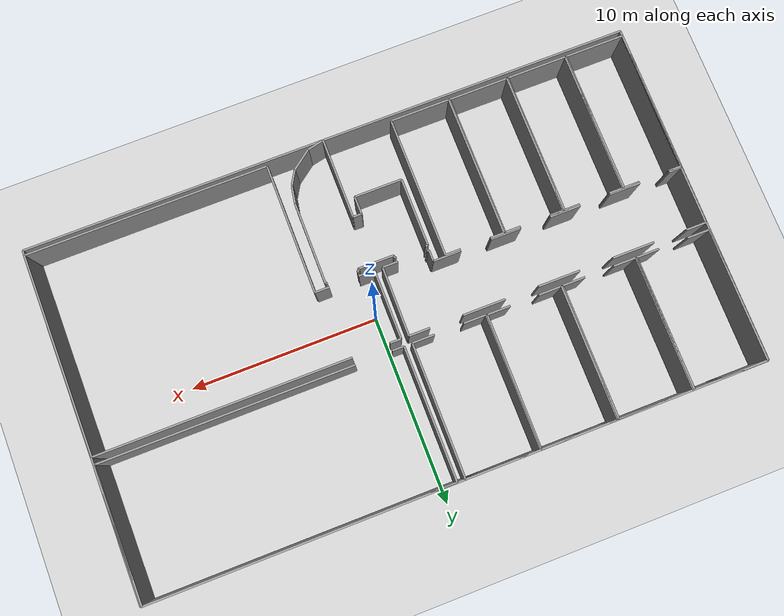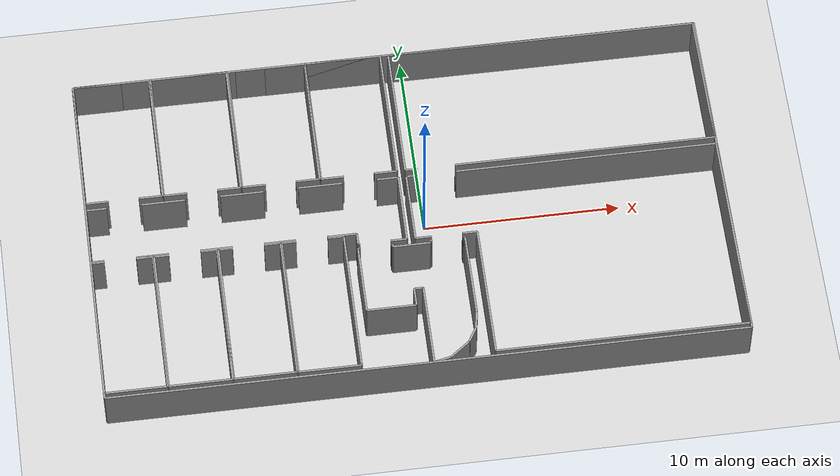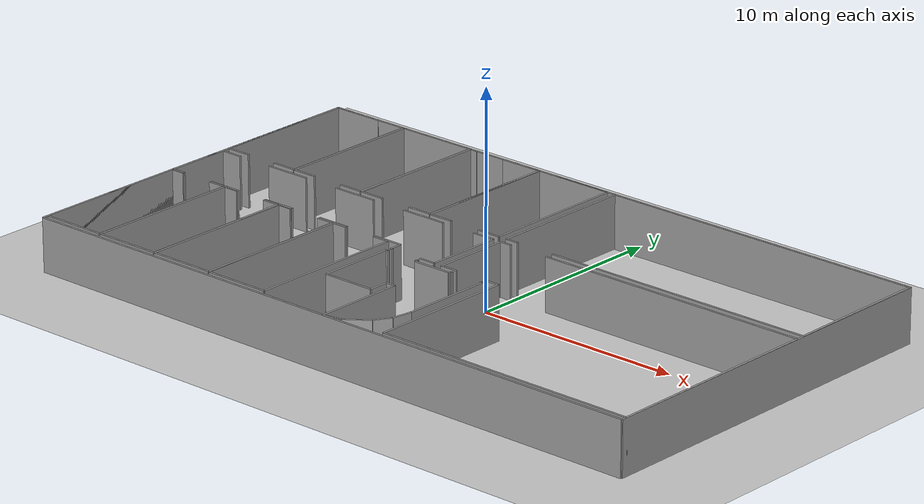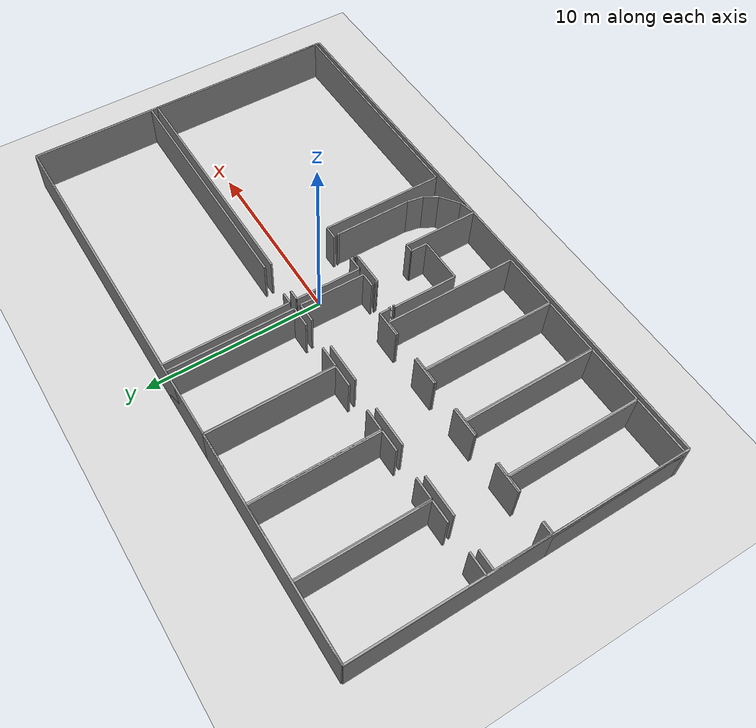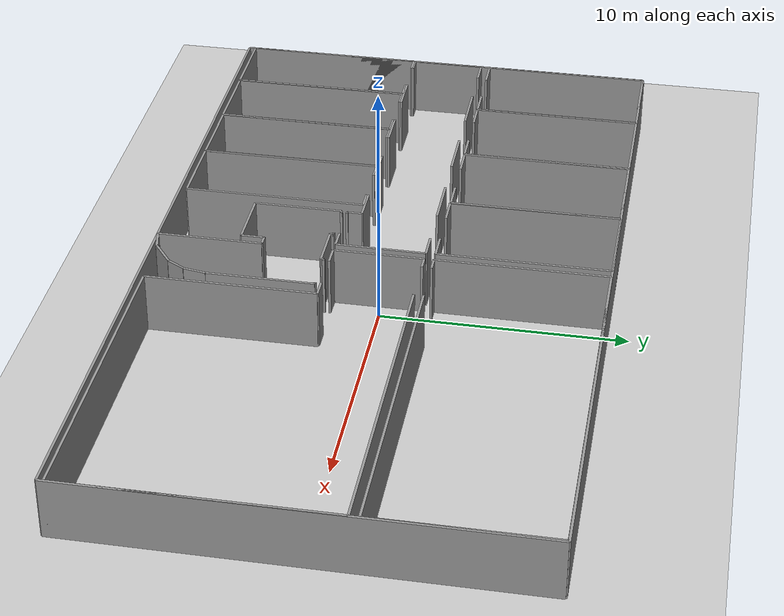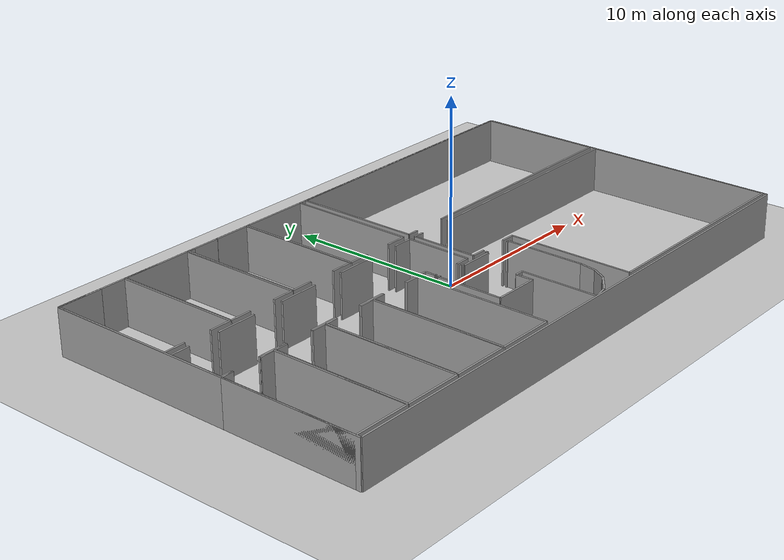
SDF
<sdf version="1.6">
 <world name="default">
  <model name="ground_plane">
   <static>1</static>
   <link name="link">
    <collision name="collision">
     <geometry><plane><normal>0 0 1</normal><size>100 100</size></plane></geometry>
     <surface><friction><ode><mu>100</mu><mu2>50</mu2></ode></friction></surface>
    </collision>
    <visual name="visual">
     <cast_shadows>0</cast_shadows>
     <geometry><plane><normal>0 0 1</normal><size>100 100</size></plane></geometry>
     <material>
      <script><uri>file://media/materials/scripts/gazebo.material</uri><name>Gazebo/Grey</name></script>
     </material>
    </visual>
   </link>
  </model>
  <model name="0510034859_A-40">
   <static>1</static>
   <link name="Wall_0">
    <collision name="Wall_0_Collision">
     <geometry><box><size>0.81266859192 0.1 2.5</size></box></geometry>
     <pose>0.40633429596 0 1.25 0 0 0</pose>
    </collision>
    <visual name="Wall_0_Visual">
     <pose>0.40633429596 0 1.25 0 0 0</pose>
     <geometry><box><size>0.81266859192 0.1 2.5</size></box></geometry>
     <material>
      <script><uri>file://media/materials/scripts/gazebo.material</uri><name>Gazebo/Grey</name></script>
      <ambient>1 1 1 1</ambient>
     </material>
    </visual>
    <pose>15.8579543651 -11.0616610073 0 0 0 3.14159265359</pose>
   </link>
   <link name="Wall_1">
    <collision name="Wall_1_Collision">
     <geometry><box><size>0.0943162705087 0.1 2.5</size></box></geometry>
     <pose>0.0471581352543 0 1.25 0 0 0</pose>
    </collision>
    <visual name="Wall_1_Visual">
     <pose>0.0471581352543 0 1.25 0 0 0</pose>
     <geometry><box><size>0.0943162705087 0.1 2.5</size></box></geometry>
     <material>
      <script><uri>file://media/materials/scripts/gazebo.material</uri><name>Gazebo/Grey</name></script>
      <ambient>1 1 1 1</ambient>
     </material>
    </visual>
    <pose>13.4991590238 -11.0616610073 0 0 0 3.14159265359</pose>
   </link>
   <link name="Wall_2">
    <collision name="Wall_2_Collision">
     <geometry><box><size>0.609691853638 0.1 2.5</size></box></geometry>
     <pose>0.304845926819 0 1.25 0 0 0</pose>
    </collision>
    <visual name="Wall_2_Visual">
     <pose>0.304845926819 0 1.25 0 0 0</pose>
     <geometry><box><size>0.609691853638 0.1 2.5</size></box></geometry>
     <material>
      <script><uri>file://media/materials/scripts/gazebo.material</uri><name>Gazebo/Grey</name></script>
      <ambient>1 1 1 1</ambient>
     </material>
    </visual>
    <pose>13.4048427533 -11.0616610073 0 0 0 1.57079632679</pose>
   </link>
   <link name="Wall_3">
    <collision name="Wall_3_Collision">
     <geometry><box><size>1.47339024468 0.1 2.5</size></box></geometry>
     <pose>0.736695122338 0 1.25 0 0 0</pose>
    </collision>
    <visual name="Wall_3_Visual">
     <pose>0.736695122338 0 1.25 0 0 0</pose>
     <geometry><box><size>1.47339024468 0.1 2.5</size></box></geometry>
     <material>
      <script><uri>file://media/materials/scripts/gazebo.material</uri><name>Gazebo/Grey</name></script>
      <ambient>1 1 1 1</ambient>
     </material>
    </visual>
    <pose>13.4048427533 -10.4519691536 0 0 0 3.14159265359</pose>
   </link>
   <link name="Wall_4">
    <collision name="Wall_4_Collision">
     <geometry><box><size>1.59410999334 0.1 2.5</size></box></geometry>
     <pose>0.797054996668 0 1.25 0 0 0</pose>
    </collision>
    <visual name="Wall_4_Visual">
     <pose>0.797054996668 0 1.25 0 0 0</pose>
     <geometry><box><size>1.59410999334 0.1 2.5</size></box></geometry>
     <material>
      <script><uri>file://media/materials/scripts/gazebo.material</uri><name>Gazebo/Grey</name></script>
      <ambient>1 1 1 1</ambient>
     </material>
    </visual>
    <pose>10.3245215956 -10.4519691536 0 0 0 3.14159265359</pose>
   </link>
   <link name="Wall_5">
    <collision name="Wall_5_Collision">
     <geometry><box><size>1.61315096316 0.1 2.5</size></box></geometry>
     <pose>0.806575481578 0 1.25 0 0 0</pose>
    </collision>
    <visual name="Wall_5_Visual">
     <pose>0.806575481578 0 1.25 0 0 0</pose>
     <geometry><box><size>1.61315096316 0.1 2.5</size></box></geometry>
     <material>
      <script><uri>file://media/materials/scripts/gazebo.material</uri><name>Gazebo/Grey</name></script>
      <ambient>1 1 1 1</ambient>
     </material>
    </visual>
    <pose>7.13617466916 -10.4519691536 0 0 0 3.14159265359</pose>
   </link>
   <link name="Wall_6">
    <collision name="Wall_6_Collision">
     <geometry><box><size>1.64755164863 0.1 2.5</size></box></geometry>
     <pose>0.823775824315 0 1.25 0 0 0</pose>
    </collision>
    <visual name="Wall_6_Visual">
     <pose>0.823775824315 0 1.25 0 0 0</pose>
     <geometry><box><size>1.64755164863 0.1 2.5</size></box></geometry>
     <material>
      <script><uri>file://media/materials/scripts/gazebo.material</uri><name>Gazebo/Grey</name></script>
      <ambient>1 1 1 1</ambient>
     </material>
    </visual>
    <pose>3.9261210371 -10.4519691536 0 0 0 3.14159265359</pose>
   </link>
   <link name="Wall_7">
    <collision name="Wall_7_Collision">
     <geometry><box><size>0.656405699597 0.1 2.5</size></box></geometry>
     <pose>0.328202849798 0 1.25 0 0 0</pose>
    </collision>
    <visual name="Wall_7_Visual">
     <pose>0.328202849798 0 1.25 0 0 0</pose>
     <geometry><box><size>0.656405699597 0.1 2.5</size></box></geometry>
     <material>
      <script><uri>file://media/materials/scripts/gazebo.material</uri><name>Gazebo/Grey</name></script>
      <ambient>1 1 1 1</ambient>
     </material>
    </visual>
    <pose>0.677477706198 -10.4519691536 0 0 0 3.14159265359</pose>
   </link>
   <link name="Wall_8">
    <collision name="Wall_8_Collision">
     <geometry><box><size>3.05010948558 0.1 2.5</size></box></geometry>
     <pose>1.52505474279 0 1.25 0 0 0</pose>
    </collision>
    <visual name="Wall_8_Visual">
     <pose>1.52505474279 0 1.25 0 0 0</pose>
     <geometry><box><size>3.05010948558 0.1 2.5</size></box></geometry>
     <material>
      <script><uri>file://media/materials/scripts/gazebo.material</uri><name>Gazebo/Grey</name></script>
      <ambient>1 1 1 1</ambient>
     </material>
    </visual>
    <pose>0.0210720066009 -10.4519691536 0 0 0 1.57079632679</pose>
   </link>
   <link name="Wall_9">
    <collision name="Wall_9_Collision">
     <geometry><box><size>1.06578655073 0.1 2.5</size></box></geometry>
     <pose>0.532893275364 0 1.25 0 0 0</pose>
    </collision>
    <visual name="Wall_9_Visual">
     <pose>0.532893275364 0 1.25 0 0 0</pose>
     <geometry><box><size>1.06578655073 0.1 2.5</size></box></geometry>
     <material>
      <script><uri>file://media/materials/scripts/gazebo.material</uri><name>Gazebo/Grey</name></script>
      <ambient>1 1 1 1</ambient>
     </material>
    </visual>
    <pose>0.0210720066009 -7.40185966805 0 0 0 0.0</pose>
   </link>
   <link name="Wall_10">
    <collision name="Wall_10_Collision">
     <geometry><box><size>2.21611500746 0.1 2.5</size></box></geometry>
     <pose>1.10805750373 0 1.25 0 0 0</pose>
    </collision>
    <visual name="Wall_10_Visual">
     <pose>1.10805750373 0 1.25 0 0 0</pose>
     <geometry><box><size>2.21611500746 0.1 2.5</size></box></geometry>
     <material>
      <script><uri>file://media/materials/scripts/gazebo.material</uri><name>Gazebo/Grey</name></script>
      <ambient>1 1 1 1</ambient>
     </material>
    </visual>
    <pose>2.84180127574 -7.40185966805 0 0 0 0.0</pose>
   </link>
   <link name="Wall_11">
    <collision name="Wall_11_Collision">
     <geometry><box><size>2.21002189712 0.1 2.5</size></box></geometry>
     <pose>1.10501094856 0 1.25 0 0 0</pose>
    </collision>
    <visual name="Wall_11_Visual">
     <pose>1.10501094856 0 1.25 0 0 0</pose>
     <geometry><box><size>2.21002189712 0.1 2.5</size></box></geometry>
     <material>
      <script><uri>file://media/materials/scripts/gazebo.material</uri><name>Gazebo/Grey</name></script>
      <ambient>1 1 1 1</ambient>
     </material>
    </visual>
    <pose>6.83075751325 -7.40185966805 0 0 0 0.0</pose>
   </link>
   <link name="Wall_12">
    <collision name="Wall_12_Collision">
     <geometry><box><size>2.23579067627 0.1 2.5</size></box></geometry>
     <pose>1.11789533814 0 1.25 0 0 0</pose>
    </collision>
    <visual name="Wall_12_Visual">
     <pose>1.11789533814 0 1.25 0 0 0</pose>
     <geometry><box><size>2.23579067627 0.1 2.5</size></box></geometry>
     <material>
      <script><uri>file://media/materials/scripts/gazebo.material</uri><name>Gazebo/Grey</name></script>
      <ambient>1 1 1 1</ambient>
     </material>
    </visual>
    <pose>10.8002919615 -7.40185966805 0 0 0 0.0</pose>
   </link>
   <link name="Wall_13">
    <collision name="Wall_13_Collision">
     <geometry><box><size>1.09815619942 0.1 2.5</size></box></geometry>
     <pose>0.549078099711 0 1.25 0 0 0</pose>
    </collision>
    <visual name="Wall_13_Visual">
     <pose>0.549078099711 0 1.25 0 0 0</pose>
     <geometry><box><size>1.09815619942 0.1 2.5</size></box></geometry>
     <material>
      <script><uri>file://media/materials/scripts/gazebo.material</uri><name>Gazebo/Grey</name></script>
      <ambient>1 1 1 1</ambient>
     </material>
    </visual>
    <pose>14.7891212592 -7.40185966805 0 0 0 0.0</pose>
   </link>
   <link name="Wall_14">
    <collision name="Wall_14_Collision">
     <geometry><box><size>3.65991880871 0.1 2.5</size></box></geometry>
     <pose>1.82995940435 0 1.25 0 0 0</pose>
    </collision>
    <visual name="Wall_14_Visual">
     <pose>1.82995940435 0 1.25 0 0 0</pose>
     <geometry><box><size>3.65991880871 0.1 2.5</size></box></geometry>
     <material>
      <script><uri>file://media/materials/scripts/gazebo.material</uri><name>Gazebo/Grey</name></script>
      <ambient>1 1 1 1</ambient>
     </material>
    </visual>
    <pose>15.8872774587 -7.40185966805 0 0 0 -1.57880836443</pose>
   </link>
   <link name="Wall_15">
    <collision name="Wall_15_Collision">
     <geometry><box><size>1.20859382438 0.1 2.5</size></box></geometry>
     <pose>0.604296912189 0 1.25 0 0 0</pose>
    </collision>
    <visual name="Wall_15_Visual">
     <pose>0.604296912189 0 1.25 0 0 0</pose>
     <geometry><box><size>1.20859382438 0.1 2.5</size></box></geometry>
     <material>
      <script><uri>file://media/materials/scripts/gazebo.material</uri><name>Gazebo/Grey</name></script>
      <ambient>1 1 1 1</ambient>
     </material>
    </visual>
    <pose>3.94655834471 -7.005680556 0 0 0 3.14159265359</pose>
   </link>
   <link name="Wall_16">
    <collision name="Wall_16_Collision">
     <geometry><box><size>1.185490781 0.1 2.5</size></box></geometry>
     <pose>0.592745390499 0 1.25 0 0 0</pose>
    </collision>
    <visual name="Wall_16_Visual">
     <pose>0.592745390499 0 1.25 0 0 0</pose>
     <geometry><box><size>1.185490781 0.1 2.5</size></box></geometry>
     <material>
      <script><uri>file://media/materials/scripts/gazebo.material</uri><name>Gazebo/Grey</name></script>
      <ambient>1 1 1 1</ambient>
     </material>
    </visual>
    <pose>1.20402399162 -7.005680556 0 0 0 3.14159265359</pose>
   </link>
   <link name="Wall_17">
    <collision name="Wall_17_Collision">
     <geometry><box><size>6.99108247913 0.1 2.5</size></box></geometry>
     <pose>3.49554123957 0 1.25 0 0 0</pose>
    </collision>
    <visual name="Wall_17_Visual">
     <pose>3.49554123957 0 1.25 0 0 0</pose>
     <geometry><box><size>6.99108247913 0.1 2.5</size></box></geometry>
     <material>
      <script><uri>file://media/materials/scripts/gazebo.material</uri><name>Gazebo/Grey</name></script>
      <ambient>1 1 1 1</ambient>
     </material>
    </visual>
    <pose>0.0185332106248 -7.005680556 0 0 0 1.57079632679</pose>
   </link>
   <link name="Wall_18">
    <collision name="Wall_18_Collision">
     <geometry><box><size>2.45869696297 0.1 2.5</size></box></geometry>
     <pose>1.22934848148 0 1.25 0 0 0</pose>
    </collision>
    <visual name="Wall_18_Visual">
     <pose>1.22934848148 0 1.25 0 0 0</pose>
     <geometry><box><size>2.45869696297 0.1 2.5</size></box></geometry>
     <material>
      <script><uri>file://media/materials/scripts/gazebo.material</uri><name>Gazebo/Grey</name></script>
      <ambient>1 1 1 1</ambient>
     </material>
    </visual>
    <pose>0.0185332106248 -0.0145980768621 0 0 0 0.0</pose>
   </link>
   <link name="Wall_19">
    <collision name="Wall_19_Collision">
     <geometry><box><size>6.9910993521 0.1 2.5</size></box></geometry>
     <pose>3.49554967605 0 1.25 0 0 0</pose>
    </collision>
    <visual name="Wall_19_Visual">
     <pose>3.49554967605 0 1.25 0 0 0</pose>
     <geometry><box><size>6.9910993521 0.1 2.5</size></box></geometry>
     <material>
      <script><uri>file://media/materials/scripts/gazebo.material</uri><name>Gazebo/Grey</name></script>
      <ambient>1 1 1 1</ambient>
     </material>
    </visual>
    <pose>3.93119862905 -0.0145980768621 0 0 0 -1.56859928635</pose>
   </link>
   <link name="Wall_20">
    <collision name="Wall_20_Collision">
     <geometry><box><size>1.18752181778 0.1 2.5</size></box></geometry>
     <pose>0.593760908889 0 1.25 0 0 0</pose>
    </collision>
    <visual name="Wall_20_Visual">
     <pose>0.593760908889 0 1.25 0 0 0</pose>
     <geometry><box><size>1.18752181778 0.1 2.5</size></box></geometry>
     <material>
      <script><uri>file://media/materials/scripts/gazebo.material</uri><name>Gazebo/Grey</name></script>
      <ambient>1 1 1 1</ambient>
     </material>
    </visual>
    <pose>7.91241153883 -7.01101202755 0 0 0 3.14159265359</pose>
   </link>
   <link name="Wall_21">
    <collision name="Wall_21_Collision">
     <geometry><box><size>1.19031449335 0.1 2.5</size></box></geometry>
     <pose>0.595157246676 0 1.25 0 0 0</pose>
    </collision>
    <visual name="Wall_21_Visual">
     <pose>0.595157246676 0 1.25 0 0 0</pose>
     <geometry><box><size>1.19031449335 0.1 2.5</size></box></geometry>
     <material>
      <script><uri>file://media/materials/scripts/gazebo.material</uri><name>Gazebo/Grey</name></script>
      <ambient>1 1 1 1</ambient>
     </material>
    </visual>
    <pose>5.184856082 -7.01101202755 0 0 0 3.14159265359</pose>
   </link>
   <link name="Wall_22">
    <collision name="Wall_22_Collision">
     <geometry><box><size>7.00898099077 0.1 2.5</size></box></geometry>
     <pose>3.50449049538 0 1.25 0 0 0</pose>
    </collision>
    <visual name="Wall_22_Visual">
     <pose>3.50449049538 0 1.25 0 0 0</pose>
     <geometry><box><size>7.00898099077 0.1 2.5</size></box></geometry>
     <material>
      <script><uri>file://media/materials/scripts/gazebo.material</uri><name>Gazebo/Grey</name></script>
      <ambient>1 1 1 1</ambient>
     </material>
    </visual>
    <pose>3.99454158865 -7.01101202755 0 0 0 1.57079632679</pose>
   </link>
   <link name="Wall_23">
    <collision name="Wall_23_Collision">
     <geometry><box><size>3.91786995018 0.1 2.5</size></box></geometry>
     <pose>1.95893497509 0 1.25 0 0 0</pose>
    </collision>
    <visual name="Wall_23_Visual">
     <pose>1.95893497509 0 1.25 0 0 0</pose>
     <geometry><box><size>3.91786995018 0.1 2.5</size></box></geometry>
     <material>
      <script><uri>file://media/materials/scripts/gazebo.material</uri><name>Gazebo/Grey</name></script>
      <ambient>1 1 1 1</ambient>
     </material>
    </visual>
    <pose>3.99454158865 -0.00203103678081 0 0 0 0.0</pose>
   </link>
   <link name="Wall_24">
    <collision name="Wall_24_Collision">
     <geometry><box><size>7.00898099077 0.1 2.5</size></box></geometry>
     <pose>3.50449049538 0 1.25 0 0 0</pose>
    </collision>
    <visual name="Wall_24_Visual">
     <pose>3.50449049538 0 1.25 0 0 0</pose>
     <geometry><box><size>7.00898099077 0.1 2.5</size></box></geometry>
     <material>
      <script><uri>file://media/materials/scripts/gazebo.material</uri><name>Gazebo/Grey</name></script>
      <ambient>1 1 1 1</ambient>
     </material>
    </visual>
    <pose>7.91241153883 -0.00203103678081 0 0 0 -1.57079632679</pose>
   </link>
   <link name="Wall_25">
    <collision name="Wall_25_Collision">
     <geometry><box><size>1.21798736949 0.1 2.5</size></box></geometry>
     <pose>0.608993684745 0 1.25 0 0 0</pose>
    </collision>
    <visual name="Wall_25_Visual">
     <pose>0.608993684745 0 1.25 0 0 0</pose>
     <geometry><box><size>1.21798736949 0.1 2.5</size></box></geometry>
     <material>
      <script><uri>file://media/materials/scripts/gazebo.material</uri><name>Gazebo/Grey</name></script>
      <ambient>1 1 1 1</ambient>
     </material>
    </visual>
    <pose>11.9271365555 -7.00263400083 0 0 0 3.14159265359</pose>
   </link>
   <link name="Wall_26">
    <collision name="Wall_26_Collision">
     <geometry><box><size>1.20173907524 0.1 2.5</size></box></geometry>
     <pose>0.600869537622 0 1.25 0 0 0</pose>
    </collision>
    <visual name="Wall_26_Visual">
     <pose>0.600869537622 0 1.25 0 0 0</pose>
     <geometry><box><size>1.20173907524 0.1 2.5</size></box></geometry>
     <material>
      <script><uri>file://media/materials/scripts/gazebo.material</uri><name>Gazebo/Grey</name></script>
      <ambient>1 1 1 1</ambient>
     </material>
    </visual>
    <pose>9.17774745327 -7.00263400083 0 0 0 3.14159265359</pose>
   </link>
   <link name="Wall_27">
    <collision name="Wall_27_Collision">
     <geometry><box><size>6.99552537209 0.1 2.5</size></box></geometry>
     <pose>3.49776268605 0 1.25 0 0 0</pose>
    </collision>
    <visual name="Wall_27_Visual">
     <pose>3.49776268605 0 1.25 0 0 0</pose>
     <geometry><box><size>6.99552537209 0.1 2.5</size></box></geometry>
     <material>
      <script><uri>file://media/materials/scripts/gazebo.material</uri><name>Gazebo/Grey</name></script>
      <ambient>1 1 1 1</ambient>
     </material>
    </visual>
    <pose>7.97600837803 -7.00263400083 0 0 0 1.57079632679</pose>
   </link>
   <link name="Wall_28">
    <collision name="Wall_28_Collision">
     <geometry><box><size>0.391355399702 0.1 2.5</size></box></geometry>
     <pose>0.195677699851 0 1.25 0 0 0</pose>
    </collision>
    <visual name="Wall_28_Visual">
     <pose>0.195677699851 0 1.25 0 0 0</pose>
     <geometry><box><size>0.391355399702 0.1 2.5</size></box></geometry>
     <material>
      <script><uri>file://media/materials/scripts/gazebo.material</uri><name>Gazebo/Grey</name></script>
      <ambient>1 1 1 1</ambient>
     </material>
    </visual>
    <pose>7.97600837803 -0.00710862873282 0 0 0 0.0</pose>
   </link>
   <link name="Wall_29">
    <collision name="Wall_29_Collision">
     <geometry><box><size>2.06645298467 0.1 2.5</size></box></geometry>
     <pose>1.03322649234 0 1.25 0 0 0</pose>
    </collision>
    <visual name="Wall_29_Visual">
     <pose>1.03322649234 0 1.25 0 0 0</pose>
     <geometry><box><size>2.06645298467 0.1 2.5</size></box></geometry>
     <material>
      <script><uri>file://media/materials/scripts/gazebo.material</uri><name>Gazebo/Grey</name></script>
      <ambient>1 1 1 1</ambient>
     </material>
    </visual>
    <pose>9.88289803561 -0.00710862873282 0 0 0 0.0</pose>
   </link>
   <link name="Wall_30">
    <collision name="Wall_30_Collision">
     <geometry><box><size>6.9955606433 0.1 2.5</size></box></geometry>
     <pose>3.49778032165 0 1.25 0 0 0</pose>
    </collision>
    <visual name="Wall_30_Visual">
     <pose>3.49778032165 0 1.25 0 0 0</pose>
     <geometry><box><size>6.9955606433 0.1 2.5</size></box></geometry>
     <material>
      <script><uri>file://media/materials/scripts/gazebo.material</uri><name>Gazebo/Grey</name></script>
      <ambient>1 1 1 1</ambient>
     </material>
    </visual>
    <pose>11.9493510203 -0.00710862873282 0 0 0 -1.57397184099</pose>
   </link>
   <link name="Wall_31">
    <collision name="Wall_31_Collision">
     <geometry><box><size>1.16162609882 0.1 2.5</size></box></geometry>
     <pose>0.580813049411 0 1.25 0 0 0</pose>
    </collision>
    <visual name="Wall_31_Visual">
     <pose>0.580813049411 0 1.25 0 0 0</pose>
     <geometry><box><size>1.16162609882 0.1 2.5</size></box></geometry>
     <material>
      <script><uri>file://media/materials/scripts/gazebo.material</uri><name>Gazebo/Grey</name></script>
      <ambient>1 1 1 1</ambient>
     </material>
    </visual>
    <pose>15.8583351845 -7.01850147568 0 0 0 3.14159265359</pose>
   </link>
   <link name="Wall_32">
    <collision name="Wall_32_Collision">
     <geometry><box><size>1.17381231951 0.1 2.5</size></box></geometry>
     <pose>0.586906159754 0 1.25 0 0 0</pose>
    </collision>
    <visual name="Wall_32_Visual">
     <pose>0.586906159754 0 1.25 0 0 0</pose>
     <geometry><box><size>1.17381231951 0.1 2.5</size></box></geometry>
     <material>
      <script><uri>file://media/materials/scripts/gazebo.material</uri><name>Gazebo/Grey</name></script>
      <ambient>1 1 1 1</ambient>
     </material>
    </visual>
    <pose>13.1545174701 -7.01850147568 0 0 0 3.14159265359</pose>
   </link>
   <link name="Wall_33">
    <collision name="Wall_33_Collision">
     <geometry><box><size>7.01850147568 0.1 2.5</size></box></geometry>
     <pose>3.50925073784 0 1.25 0 0 0</pose>
    </collision>
    <visual name="Wall_33_Visual">
     <pose>3.50925073784 0 1.25 0 0 0</pose>
     <geometry><box><size>7.01850147568 0.1 2.5</size></box></geometry>
     <material>
      <script><uri>file://media/materials/scripts/gazebo.material</uri><name>Gazebo/Grey</name></script>
      <ambient>1 1 1 1</ambient>
     </material>
    </visual>
    <pose>11.9807051506 -7.01850147568 0 0 0 1.57079632679</pose>
   </link>
   <link name="Wall_34">
    <collision name="Wall_34_Collision">
     <geometry><box><size>3.88156516772 0.1 2.5</size></box></geometry>
     <pose>1.94078258386 0 1.25 0 0 0</pose>
    </collision>
    <visual name="Wall_34_Visual">
     <pose>1.94078258386 0 1.25 0 0 0</pose>
     <geometry><box><size>3.88156516772 0.1 2.5</size></box></geometry>
     <material>
      <script><uri>file://media/materials/scripts/gazebo.material</uri><name>Gazebo/Grey</name></script>
      <ambient>1 1 1 1</ambient>
     </material>
    </visual>
    <pose>11.9807051506 -0.0 0 0 0 0.0</pose>
   </link>
   <link name="Wall_35">
    <collision name="Wall_35_Collision">
     <geometry><box><size>7.01850257885 0.1 2.5</size></box></geometry>
     <pose>3.50925128943 0 1.25 0 0 0</pose>
    </collision>
    <visual name="Wall_35_Visual">
     <pose>3.50925128943 0 1.25 0 0 0</pose>
     <geometry><box><size>7.01850257885 0.1 2.5</size></box></geometry>
     <material>
      <script><uri>file://media/materials/scripts/gazebo.material</uri><name>Gazebo/Grey</name></script>
      <ambient>1 1 1 1</ambient>
     </material>
    </visual>
    <pose>15.8622703183 -0.0 0 0 0 -1.57135700679</pose>
   </link>
   <link name="Wall_36">
    <collision name="Wall_36_Collision">
     <geometry><box><size>3.13985592333 0.1 2.5</size></box></geometry>
     <pose>1.56992796166 0 1.25 0 0 0</pose>
    </collision>
    <visual name="Wall_36_Visual">
     <pose>1.56992796166 0 1.25 0 0 0</pose>
     <geometry><box><size>3.13985592333 0.1 2.5</size></box></geometry>
     <material>
      <script><uri>file://media/materials/scripts/gazebo.material</uri><name>Gazebo/Grey</name></script>
      <ambient>1 1 1 1</ambient>
     </material>
    </visual>
    <pose>3.13985592333 -17.9819110787 0 0 0 3.14159265359</pose>
   </link>
   <link name="Wall_37">
    <collision name="Wall_37_Collision">
     <geometry><box><size>7.46723366443 0.1 2.5</size></box></geometry>
     <pose>3.73361683222 0 1.25 0 0 0</pose>
    </collision>
    <visual name="Wall_37_Visual">
     <pose>3.73361683222 0 1.25 0 0 0</pose>
     <geometry><box><size>7.46723366443 0.1 2.5</size></box></geometry>
     <material>
      <script><uri>file://media/materials/scripts/gazebo.material</uri><name>Gazebo/Grey</name></script>
      <ambient>1 1 1 1</ambient>
     </material>
    </visual>
    <pose>0.0 -17.9819110787 0 0 0 1.57079632679</pose>
   </link>
   <link name="Wall_38">
    <collision name="Wall_38_Collision">
     <geometry><box><size>0.677096886801 0.1 2.5</size></box></geometry>
     <pose>0.338548443401 0 1.25 0 0 0</pose>
    </collision>
    <visual name="Wall_38_Visual">
     <pose>0.338548443401 0 1.25 0 0 0</pose>
     <geometry><box><size>0.677096886801 0.1 2.5</size></box></geometry>
     <material>
      <script><uri>file://media/materials/scripts/gazebo.material</uri><name>Gazebo/Grey</name></script>
      <ambient>1 1 1 1</ambient>
     </material>
    </visual>
    <pose>0.0 -10.5146774142 0 0 0 0.0</pose>
   </link>
   <link name="Wall_39">
    <collision name="Wall_39_Collision">
     <geometry><box><size>0.830567103551 0.1 2.5</size></box></geometry>
     <pose>0.415283551776 0 1.25 0 0 0</pose>
    </collision>
    <visual name="Wall_39_Visual">
     <pose>0.415283551776 0 1.25 0 0 0</pose>
     <geometry><box><size>0.830567103551 0.1 2.5</size></box></geometry>
     <material>
      <script><uri>file://media/materials/scripts/gazebo.material</uri><name>Gazebo/Grey</name></script>
      <ambient>1 1 1 1</ambient>
     </material>
    </visual>
    <pose>2.28986703056 -10.5146774142 0 0 0 0.0</pose>
   </link>
   <link name="Wall_40">
    <collision name="Wall_40_Collision">
     <geometry><box><size>7.4672589218 0.1 2.5</size></box></geometry>
     <pose>3.7336294609 0 1.25 0 0 0</pose>
    </collision>
    <visual name="Wall_40_Visual">
     <pose>3.7336294609 0 1.25 0 0 0</pose>
     <geometry><box><size>7.4672589218 0.1 2.5</size></box></geometry>
     <material>
      <script><uri>file://media/materials/scripts/gazebo.material</uri><name>Gazebo/Grey</name></script>
      <ambient>1 1 1 1</ambient>
     </material>
    </visual>
    <pose>3.12043413411 -10.5146774142 0 0 0 -1.56819539768</pose>
   </link>
   <link name="Wall_41">
    <collision name="Wall_41_Collision">
     <geometry><box><size>3.18199993653 0.1 2.5</size></box></geometry>
     <pose>1.59099996827 0 1.25 0 0 0</pose>
    </collision>
    <visual name="Wall_41_Visual">
     <pose>1.59099996827 0 1.25 0 0 0</pose>
     <geometry><box><size>3.18199993653 0.1 2.5</size></box></geometry>
     <material>
      <script><uri>file://media/materials/scripts/gazebo.material</uri><name>Gazebo/Grey</name></script>
      <ambient>1 1 1 1</ambient>
     </material>
    </visual>
    <pose>6.36374599346 -17.9807686205 0 0 0 3.14159265359</pose>
   </link>
   <link name="Wall_42">
    <collision name="Wall_42_Collision">
     <geometry><box><size>7.4599980959 0.1 2.5</size></box></geometry>
     <pose>3.72999904795 0 1.25 0 0 0</pose>
    </collision>
    <visual name="Wall_42_Visual">
     <pose>3.72999904795 0 1.25 0 0 0</pose>
     <geometry><box><size>7.4599980959 0.1 2.5</size></box></geometry>
     <material>
      <script><uri>file://media/materials/scripts/gazebo.material</uri><name>Gazebo/Grey</name></script>
      <ambient>1 1 1 1</ambient>
     </material>
    </visual>
    <pose>3.18174605693 -17.9807686205 0 0 0 1.57079632679</pose>
   </link>
   <link name="Wall_43">
    <collision name="Wall_43_Collision">
     <geometry><box><size>0.73117324109 0.1 2.5</size></box></geometry>
     <pose>0.365586620545 0 1.25 0 0 0</pose>
    </collision>
    <visual name="Wall_43_Visual">
     <pose>0.365586620545 0 1.25 0 0 0</pose>
     <geometry><box><size>0.73117324109 0.1 2.5</size></box></geometry>
     <material>
      <script><uri>file://media/materials/scripts/gazebo.material</uri><name>Gazebo/Grey</name></script>
      <ambient>1 1 1 1</ambient>
     </material>
    </visual>
    <pose>3.18174605693 -10.5207705246 0 0 0 0.0</pose>
   </link>
   <link name="Wall_44">
    <collision name="Wall_44_Collision">
     <geometry><box><size>0.823204595221 0.1 2.5</size></box></geometry>
     <pose>0.41160229761 0 1.25 0 0 0</pose>
    </collision>
    <visual name="Wall_44_Visual">
     <pose>0.41160229761 0 1.25 0 0 0</pose>
     <geometry><box><size>0.823204595221 0.1 2.5</size></box></geometry>
     <material>
      <script><uri>file://media/materials/scripts/gazebo.material</uri><name>Gazebo/Grey</name></script>
      <ambient>1 1 1 1</ambient>
     </material>
    </visual>
    <pose>5.52302370601 -10.5207705246 0 0 0 0.0</pose>
   </link>
   <link name="Wall_45">
    <collision name="Wall_45_Collision">
     <geometry><box><size>7.46001866354 0.1 2.5</size></box></geometry>
     <pose>3.73000933177 0 1.25 0 0 0</pose>
    </collision>
    <visual name="Wall_45_Visual">
     <pose>3.73000933177 0 1.25 0 0 0</pose>
     <geometry><box><size>7.46001866354 0.1 2.5</size></box></geometry>
     <material>
      <script><uri>file://media/materials/scripts/gazebo.material</uri><name>Gazebo/Grey</name></script>
      <ambient>1 1 1 1</ambient>
     </material>
    </visual>
    <pose>6.34622830123 -10.5207705246 0 0 0 -1.56844811439</pose>
   </link>
   <link name="Wall_46">
    <collision name="Wall_46_Collision">
     <geometry><box><size>3.14480657548 0.1 2.5</size></box></geometry>
     <pose>1.57240328774 0 1.25 0 0 0</pose>
    </collision>
    <visual name="Wall_46_Visual">
     <pose>1.57240328774 0 1.25 0 0 0</pose>
     <geometry><box><size>3.14480657548 0.1 2.5</size></box></geometry>
     <material>
      <script><uri>file://media/materials/scripts/gazebo.material</uri><name>Gazebo/Grey</name></script>
      <ambient>1 1 1 1</ambient>
     </material>
    </visual>
    <pose>9.55260067913 -17.9721367142 0 0 0 3.14159265359</pose>
   </link>
   <link name="Wall_47">
    <collision name="Wall_47_Collision">
     <geometry><box><size>7.44654247723 0.1 2.5</size></box></geometry>
     <pose>3.72327123862 0 1.25 0 0 0</pose>
    </collision>
    <visual name="Wall_47_Visual">
     <pose>3.72327123862 0 1.25 0 0 0</pose>
     <geometry><box><size>7.44654247723 0.1 2.5</size></box></geometry>
     <material>
      <script><uri>file://media/materials/scripts/gazebo.material</uri><name>Gazebo/Grey</name></script>
      <ambient>1 1 1 1</ambient>
     </material>
    </visual>
    <pose>6.40779410365 -17.9721367142 0 0 0 1.57079632679</pose>
   </link>
   <link name="Wall_48">
    <collision name="Wall_48_Collision">
     <geometry><box><size>0.707435498715 0.1 2.5</size></box></geometry>
     <pose>0.353717749357 0 1.25 0 0 0</pose>
    </collision>
    <visual name="Wall_48_Visual">
     <pose>0.353717749357 0 1.25 0 0 0</pose>
     <geometry><box><size>0.707435498715 0.1 2.5</size></box></geometry>
     <material>
      <script><uri>file://media/materials/scripts/gazebo.material</uri><name>Gazebo/Grey</name></script>
      <ambient>1 1 1 1</ambient>
     </material>
    </visual>
    <pose>6.40779410365 -10.5255942369 0 0 0 0.0</pose>
   </link>
   <link name="Wall_49">
    <collision name="Wall_49_Collision">
     <geometry><box><size>0.830313223954 0.1 2.5</size></box></geometry>
     <pose>0.415156611977 0 1.25 0 0 0</pose>
    </collision>
    <visual name="Wall_49_Visual">
     <pose>0.415156611977 0 1.25 0 0 0</pose>
     <geometry><box><size>0.830313223954 0.1 2.5</size></box></geometry>
     <material>
      <script><uri>file://media/materials/scripts/gazebo.material</uri><name>Gazebo/Grey</name></script>
      <ambient>1 1 1 1</ambient>
     </material>
    </visual>
    <pose>8.71746374282 -10.5255942369 0 0 0 0.0</pose>
   </link>
   <link name="Wall_50">
    <collision name="Wall_50_Collision">
     <geometry><box><size>7.44654403958 0.1 2.5</size></box></geometry>
     <pose>3.72327201979 0 1.25 0 0 0</pose>
    </collision>
    <visual name="Wall_50_Visual">
     <pose>3.72327201979 0 1.25 0 0 0</pose>
     <geometry><box><size>7.44654403958 0.1 2.5</size></box></geometry>
     <material>
      <script><uri>file://media/materials/scripts/gazebo.material</uri><name>Gazebo/Grey</name></script>
      <ambient>1 1 1 1</ambient>
     </material>
    </visual>
    <pose>9.54777696677 -10.5255942369 0 0 0 -1.57014854808</pose>
   </link>
   <link name="Wall_51">
    <collision name="Wall_51_Collision">
     <geometry><box><size>3.1430294183 0.1 2.5</size></box></geometry>
     <pose>1.57151470915 0 1.25 0 0 0</pose>
    </collision>
    <visual name="Wall_51_Visual">
     <pose>1.57151470915 0 1.25 0 0 0</pose>
     <geometry><box><size>3.1430294183 0.1 2.5</size></box></geometry>
     <material>
      <script><uri>file://media/materials/scripts/gazebo.material</uri><name>Gazebo/Grey</name></script>
      <ambient>1 1 1 1</ambient>
     </material>
    </visual>
    <pose>12.7443749802 -17.9807686205 0 0 0 3.14159265359</pose>
   </link>
   <link name="Wall_52">
    <collision name="Wall_52_Collision">
     <geometry><box><size>7.45580908254 0.1 2.5</size></box></geometry>
     <pose>3.72790454127 0 1.25 0 0 0</pose>
    </collision>
    <visual name="Wall_52_Visual">
     <pose>3.72790454127 0 1.25 0 0 0</pose>
     <geometry><box><size>7.45580908254 0.1 2.5</size></box></geometry>
     <material>
      <script><uri>file://media/materials/scripts/gazebo.material</uri><name>Gazebo/Grey</name></script>
      <ambient>1 1 1 1</ambient>
     </material>
    </visual>
    <pose>9.60134556187 -17.9807686205 0 0 0 1.57079632679</pose>
   </link>
   <link name="Wall_53">
    <collision name="Wall_53_Collision">
     <geometry><box><size>0.72698422773 0.1 2.5</size></box></geometry>
     <pose>0.363492113865 0 1.25 0 0 0</pose>
    </collision>
    <visual name="Wall_53_Visual">
     <pose>0.363492113865 0 1.25 0 0 0</pose>
     <geometry><box><size>0.72698422773 0.1 2.5</size></box></geometry>
     <material>
      <script><uri>file://media/materials/scripts/gazebo.material</uri><name>Gazebo/Grey</name></script>
      <ambient>1 1 1 1</ambient>
     </material>
    </visual>
    <pose>9.60134556187 -10.5249595379 0 0 0 0.0</pose>
   </link>
   <link name="Wall_54">
    <collision name="Wall_54_Collision">
     <geometry><box><size>0.812160832725 0.1 2.5</size></box></geometry>
     <pose>0.406080416363 0 1.25 0 0 0</pose>
    </collision>
    <visual name="Wall_54_Visual">
     <pose>0.406080416363 0 1.25 0 0 0</pose>
     <geometry><box><size>0.812160832725 0.1 2.5</size></box></geometry>
     <material>
      <script><uri>file://media/materials/scripts/gazebo.material</uri><name>Gazebo/Grey</name></script>
      <ambient>1 1 1 1</ambient>
     </material>
    </visual>
    <pose>11.9275173749 -10.5249595379 0 0 0 0.0</pose>
   </link>
   <link name="Wall_55">
    <collision name="Wall_55_Collision">
     <geometry><box><size>7.4558105619 0.1 2.5</size></box></geometry>
     <pose>3.72790528095 0 1.25 0 0 0</pose>
    </collision>
    <visual name="Wall_55_Visual">
     <pose>3.72790528095 0 1.25 0 0 0</pose>
     <geometry><box><size>7.4558105619 0.1 2.5</size></box></geometry>
     <material>
      <script><uri>file://media/materials/scripts/gazebo.material</uri><name>Gazebo/Grey</name></script>
      <ambient>1 1 1 1</ambient>
     </material>
    </visual>
    <pose>12.7396782076 -10.5249595379 0 0 0 -1.57016637881</pose>
   </link>
   <link name="Wall_56">
    <collision name="Wall_56_Collision">
     <geometry><box><size>4.27749040018 0.1 2.5</size></box></geometry>
     <pose>2.13874520009 0 1.25 0 0 0</pose>
    </collision>
    <visual name="Wall_56_Visual">
     <pose>2.13874520009 0 1.25 0 0 0</pose>
     <geometry><box><size>4.27749040018 0.1 2.5</size></box></geometry>
     <material>
      <script><uri>file://media/materials/scripts/gazebo.material</uri><name>Gazebo/Grey</name></script>
      <ambient>1 1 1 1</ambient>
     </material>
    </visual>
    <pose>16.3195074736 -18.2578782013 0 0 0 1.57079632679</pose>
   </link>
   <link name="Wall_57">
    <collision name="Wall_57_Collision">
     <geometry><box><size>0.452794262321 0.1 2.5</size></box></geometry>
     <pose>0.226397131161 0 1.25 0 0 0</pose>
    </collision>
    <visual name="Wall_57_Visual">
     <pose>0.226397131161 0 1.25 0 0 0</pose>
     <geometry><box><size>0.452794262321 0.1 2.5</size></box></geometry>
     <material>
      <script><uri>file://media/materials/scripts/gazebo.material</uri><name>Gazebo/Grey</name></script>
      <ambient>1 1 1 1</ambient>
     </material>
    </visual>
    <pose>16.3195074736 -13.9803878011 0 0 0 3.14159265359</pose>
   </link>
   <link name="Wall_58">
    <collision name="Wall_58_Collision">
     <geometry><box><size>0.943162705087 0.1 2.5</size></box></geometry>
     <pose>0.471581352544 0 1.25 0 0 0</pose>
    </collision>
    <visual name="Wall_58_Visual">
     <pose>0.471581352544 0 1.25 0 0 0</pose>
     <geometry><box><size>0.943162705087 0.1 2.5</size></box></geometry>
     <material>
      <script><uri>file://media/materials/scripts/gazebo.material</uri><name>Gazebo/Grey</name></script>
      <ambient>1 1 1 1</ambient>
     </material>
    </visual>
    <pose>15.8667132113 -13.9803878011 0 0 0 -1.57079632679</pose>
   </link>
   <link name="Wall_59">
    <collision name="Wall_59_Collision">
     <geometry><box><size>2.50401447114 0.1 2.5</size></box></geometry>
     <pose>1.25200723557 0 1.25 0 0 0</pose>
    </collision>
    <visual name="Wall_59_Visual">
     <pose>1.25200723557 0 1.25 0 0 0</pose>
     <geometry><box><size>2.50401447114 0.1 2.5</size></box></geometry>
     <material>
      <script><uri>file://media/materials/scripts/gazebo.material</uri><name>Gazebo/Grey</name></script>
      <ambient>1 1 1 1</ambient>
     </material>
    </visual>
    <pose>15.8667132113 -14.9235505062 0 0 0 3.14159265359</pose>
   </link>
   <link name="Wall_60">
    <collision name="Wall_60_Collision">
     <geometry><box><size>3.62565453334 0.1 2.5</size></box></geometry>
     <pose>1.81282726667 0 1.25 0 0 0</pose>
    </collision>
    <visual name="Wall_60_Visual">
     <pose>1.81282726667 0 1.25 0 0 0</pose>
     <geometry><box><size>3.62565453334 0.1 2.5</size></box></geometry>
     <material>
      <script><uri>file://media/materials/scripts/gazebo.material</uri><name>Gazebo/Grey</name></script>
      <ambient>1 1 1 1</ambient>
     </material>
    </visual>
    <pose>13.3626987401 -14.9235505062 0 0 0 1.57079632679</pose>
   </link>
   <link name="Wall_61">
    <collision name="Wall_61_Collision">
     <geometry><box><size>0.128590016185 0.1 2.5</size></box></geometry>
     <pose>0.0642950080924 0 1.25 0 0 0</pose>
    </collision>
    <visual name="Wall_61_Visual">
     <pose>0.0642950080924 0 1.25 0 0 0</pose>
     <geometry><box><size>0.128590016185 0.1 2.5</size></box></geometry>
     <material>
      <script><uri>file://media/materials/scripts/gazebo.material</uri><name>Gazebo/Grey</name></script>
      <ambient>1 1 1 1</ambient>
     </material>
    </visual>
    <pose>13.3626987401 -11.2978959728 0 0 0 0.0</pose>
   </link>
   <link name="Wall_62">
    <collision name="Wall_62_Collision">
     <geometry><box><size>0.0846688457999 0.1 2.5</size></box></geometry>
     <pose>0.0423344228999 0 1.25 0 0 0</pose>
    </collision>
    <visual name="Wall_62_Visual">
     <pose>0.0423344228999 0 1.25 0 0 0</pose>
     <geometry><box><size>0.0846688457999 0.1 2.5</size></box></geometry>
     <material>
      <script><uri>file://media/materials/scripts/gazebo.material</uri><name>Gazebo/Grey</name></script>
      <ambient>1 1 1 1</ambient>
     </material>
    </visual>
    <pose>15.0450318936 -11.2978959728 0 0 0 0.0</pose>
   </link>
   <link name="Wall_63">
    <collision name="Wall_63_Collision">
     <geometry><box><size>0.129605534575 0.1 2.5</size></box></geometry>
     <pose>0.0648027672876 0 1.25 0 0 0</pose>
    </collision>
    <visual name="Wall_63_Visual">
     <pose>0.0648027672876 0 1.25 0 0 0</pose>
     <geometry><box><size>0.129605534575 0.1 2.5</size></box></geometry>
     <material>
      <script><uri>file://media/materials/scripts/gazebo.material</uri><name>Gazebo/Grey</name></script>
      <ambient>1 1 1 1</ambient>
     </material>
    </visual>
    <pose>15.1297007394 -11.2978959728 0 0 0 -1.57079632679</pose>
   </link>
   <link name="Wall_64">
    <collision name="Wall_64_Collision">
     <geometry><box><size>1.87629716607 0.1 2.5</size></box></geometry>
     <pose>0.938148583034 0 1.25 0 0 0</pose>
    </collision>
    <visual name="Wall_64_Visual">
     <pose>0.938148583034 0 1.25 0 0 0</pose>
     <geometry><box><size>1.87629716607 0.1 2.5</size></box></geometry>
     <material>
      <script><uri>file://media/materials/scripts/gazebo.material</uri><name>Gazebo/Grey</name></script>
      <ambient>1 1 1 1</ambient>
     </material>
    </visual>
    <pose>15.1297007394 -11.4275015074 0 0 0 0.0</pose>
   </link>
   <link name="Wall_65">
    <collision name="Wall_65_Collision">
     <geometry><box><size>0.118815651677 0.1 2.5</size></box></geometry>
     <pose>0.0594078258386 0 1.25 0 0 0</pose>
    </collision>
    <visual name="Wall_65_Visual">
     <pose>0.0594078258386 0 1.25 0 0 0</pose>
     <geometry><box><size>0.118815651677 0.1 2.5</size></box></geometry>
     <material>
      <script><uri>file://media/materials/scripts/gazebo.material</uri><name>Gazebo/Grey</name></script>
      <ambient>1 1 1 1</ambient>
     </material>
    </visual>
    <pose>17.0059979055 -11.4275015074 0 0 0 1.57079632679</pose>
   </link>
   <link name="Wall_66">
    <collision name="Wall_66_Collision">
     <geometry><box><size>0.111833962743 0.1 2.5</size></box></geometry>
     <pose>0.0559169813716 0 1.25 0 0 0</pose>
    </collision>
    <visual name="Wall_66_Visual">
     <pose>0.0559169813716 0 1.25 0 0 0</pose>
     <geometry><box><size>0.111833962743 0.1 2.5</size></box></geometry>
     <material>
      <script><uri>file://media/materials/scripts/gazebo.material</uri><name>Gazebo/Grey</name></script>
      <ambient>1 1 1 1</ambient>
     </material>
    </visual>
    <pose>17.0059979055 -11.3086858557 0 0 0 0.0</pose>
   </link>
   <link name="Wall_67">
    <collision name="Wall_67_Collision">
     <geometry><box><size>0.0987591634667 0.1 2.5</size></box></geometry>
     <pose>0.0493795817334 0 1.25 0 0 0</pose>
    </collision>
    <visual name="Wall_67_Visual">
     <pose>0.0493795817334 0 1.25 0 0 0</pose>
     <geometry><box><size>0.0987591634667 0.1 2.5</size></box></geometry>
     <material>
      <script><uri>file://media/materials/scripts/gazebo.material</uri><name>Gazebo/Grey</name></script>
      <ambient>1 1 1 1</ambient>
     </material>
    </visual>
    <pose>18.6776681159 -11.3086858557 0 0 0 0.0</pose>
   </link>
   <link name="Wall_68">
    <collision name="Wall_68_Collision">
     <geometry><box><size>4.36228618578 0.1 2.5</size></box></geometry>
     <pose>2.18114309289 0 1.25 0 0 0</pose>
    </collision>
    <visual name="Wall_68_Visual">
     <pose>2.18114309289 0 1.25 0 0 0</pose>
     <geometry><box><size>4.36228618578 0.1 2.5</size></box></geometry>
     <material>
      <script><uri>file://media/materials/scripts/gazebo.material</uri><name>Gazebo/Grey</name></script>
      <ambient>1 1 1 1</ambient>
     </material>
    </visual>
    <pose>18.7764272794 -11.3086858557 0 0 0 -1.57079632679</pose>
   </link>
   <link name="Wall_69">
    <collision name="Wall_69_Collision">
     <geometry><box><size>0.935715999786 0.1 2.5</size></box></geometry>
     <pose>0.467857999893 0 1.25 0 0 0</pose>
    </collision>
    <visual name="Wall_69_Visual">
     <pose>0.467857999893 0 1.25 0 0 0</pose>
     <geometry><box><size>0.935715999786 0.1 2.5</size></box></geometry>
     <material>
      <script><uri>file://media/materials/scripts/gazebo.material</uri><name>Gazebo/Grey</name></script>
      <ambient>1 1 1 1</ambient>
     </material>
    </visual>
    <pose>18.7764272794 -15.6709720415 0 0 0 -1.74560212214</pose>
   </link>
   <link name="Wall_70">
    <collision name="Wall_70_Collision">
     <geometry><box><size>0.843125409548 0.1 2.5</size></box></geometry>
     <pose>0.421562704774 0 1.25 0 0 0</pose>
    </collision>
    <visual name="Wall_70_Visual">
     <pose>0.421562704774 0 1.25 0 0 0</pose>
     <geometry><box><size>0.843125409548 0.1 2.5</size></box></geometry>
     <material>
      <script><uri>file://media/materials/scripts/gazebo.material</uri><name>Gazebo/Grey</name></script>
      <ambient>1 1 1 1</ambient>
     </material>
    </visual>
    <pose>18.6136904573 -16.592428041 0 0 0 -2.1048639191</pose>
   </link>
   <link name="Wall_71">
    <collision name="Wall_71_Collision">
     <geometry><box><size>1.24835410818 0.1 2.5</size></box></geometry>
     <pose>0.624177054089 0 1.25 0 0 0</pose>
    </collision>
    <visual name="Wall_71_Visual">
     <pose>0.624177054089 0 1.25 0 0 0</pose>
     <geometry><box><size>1.24835410818 0.1 2.5</size></box></geometry>
     <material>
      <script><uri>file://media/materials/scripts/gazebo.material</uri><name>Gazebo/Grey</name></script>
      <ambient>1 1 1 1</ambient>
     </material>
    </visual>
    <pose>18.1845069976 -17.3181428707 0 0 0 -2.49599681723</pose>
   </link>
   <link name="Wall_72">
    <collision name="Wall_72_Collision">
     <geometry><box><size>0.888150202524 0.1 2.5</size></box></geometry>
     <pose>0.444075101262 0 1.25 0 0 0</pose>
    </collision>
    <visual name="Wall_72_Visual">
     <pose>0.444075101262 0 1.25 0 0 0</pose>
     <geometry><box><size>0.888150202524 0.1 2.5</size></box></geometry>
     <material>
      <script><uri>file://media/materials/scripts/gazebo.material</uri><name>Gazebo/Grey</name></script>
      <ambient>1 1 1 1</ambient>
     </material>
    </visual>
    <pose>17.187394878 -18.0692456602 0 0 0 -2.92757447645</pose>
   </link>
   <link name="Wall_73">
    <collision name="Wall_73_Collision">
     <geometry><box><size>12.7757291105 0.1 2.5</size></box></geometry>
     <pose>6.38786455523 0 1.25 0 0 0</pose>
    </collision>
    <visual name="Wall_73_Visual">
     <pose>6.38786455523 0 1.25 0 0 0</pose>
     <geometry><box><size>12.7757291105 0.1 2.5</size></box></geometry>
     <material>
      <script><uri>file://media/materials/scripts/gazebo.material</uri><name>Gazebo/Grey</name></script>
      <ambient>1 1 1 1</ambient>
     </material>
    </visual>
    <pose>32.1980260861 -17.9995557107 0 0 0 3.14159265359</pose>
   </link>
   <link name="Wall_74">
    <collision name="Wall_74_Collision">
     <geometry><box><size>6.92316968678 0.1 2.5</size></box></geometry>
     <pose>3.46158484339 0 1.25 0 0 0</pose>
    </collision>
    <visual name="Wall_74_Visual">
     <pose>3.46158484339 0 1.25 0 0 0</pose>
     <geometry><box><size>6.92316968678 0.1 2.5</size></box></geometry>
     <material>
      <script><uri>file://media/materials/scripts/gazebo.material</uri><name>Gazebo/Grey</name></script>
      <ambient>1 1 1 1</ambient>
     </material>
    </visual>
    <pose>19.4222969757 -17.9995557107 0 0 0 1.57079632679</pose>
   </link>
   <link name="Wall_75">
    <collision name="Wall_75_Collision">
     <geometry><box><size>0.754910983466 0.1 2.5</size></box></geometry>
     <pose>0.377455491733 0 1.25 0 0 0</pose>
    </collision>
    <visual name="Wall_75_Visual">
     <pose>0.377455491733 0 1.25 0 0 0</pose>
     <geometry><box><size>0.754910983466 0.1 2.5</size></box></geometry>
     <material>
      <script><uri>file://media/materials/scripts/gazebo.material</uri><name>Gazebo/Grey</name></script>
      <ambient>1 1 1 1</ambient>
     </material>
    </visual>
    <pose>19.4222969757 -11.0763860239 0 0 0 3.14159265359</pose>
   </link>
   <link name="Wall_76">
    <collision name="Wall_76_Collision">
     <geometry><box><size>0.828663006569 0.1 2.5</size></box></geometry>
     <pose>0.414331503285 0 1.25 0 0 0</pose>
    </collision>
    <visual name="Wall_76_Visual">
     <pose>0.414331503285 0 1.25 0 0 0</pose>
     <geometry><box><size>0.828663006569 0.1 2.5</size></box></geometry>
     <material>
      <script><uri>file://media/materials/scripts/gazebo.material</uri><name>Gazebo/Grey</name></script>
      <ambient>1 1 1 1</ambient>
     </material>
    </visual>
    <pose>17.1191012662 -11.0763860239 0 0 0 3.14159265359</pose>
   </link>
   <link name="Wall_77">
    <collision name="Wall_77_Collision">
     <geometry><box><size>3.66779854654 0.1 2.5</size></box></geometry>
     <pose>1.83389927327 0 1.25 0 0 0</pose>
    </collision>
    <visual name="Wall_77_Visual">
     <pose>1.83389927327 0 1.25 0 0 0</pose>
     <geometry><box><size>3.66779854654 0.1 2.5</size></box></geometry>
     <material>
      <script><uri>file://media/materials/scripts/gazebo.material</uri><name>Gazebo/Grey</name></script>
      <ambient>1 1 1 1</ambient>
     </material>
    </visual>
    <pose>16.2904382597 -11.0763860239 0 0 0 1.57079632679</pose>
   </link>
   <link name="Wall_78">
    <collision name="Wall_78_Collision">
     <geometry><box><size>0.581638158104 0.1 2.5</size></box></geometry>
     <pose>0.290819079052 0 1.25 0 0 0</pose>
    </collision>
    <visual name="Wall_78_Visual">
     <pose>0.290819079052 0 1.25 0 0 0</pose>
     <geometry><box><size>0.581638158104 0.1 2.5</size></box></geometry>
     <material>
      <script><uri>file://media/materials/scripts/gazebo.material</uri><name>Gazebo/Grey</name></script>
      <ambient>1 1 1 1</ambient>
     </material>
    </visual>
    <pose>16.2904382597 -7.40858747739 0 0 0 0.0</pose>
   </link>
   <link name="Wall_79">
    <collision name="Wall_79_Collision">
     <geometry><box><size>13.3364222018 0.1 2.5</size></box></geometry>
     <pose>6.66821110089 0 1.25 0 0 0</pose>
    </collision>
    <visual name="Wall_79_Visual">
     <pose>6.66821110089 0 1.25 0 0 0</pose>
     <geometry><box><size>13.3364222018 0.1 2.5</size></box></geometry>
     <material>
      <script><uri>file://media/materials/scripts/gazebo.material</uri><name>Gazebo/Grey</name></script>
      <ambient>1 1 1 1</ambient>
     </material>
    </visual>
    <pose>18.8362159246 -7.40858747739 0 0 0 0.0</pose>
   </link>
   <link name="Wall_80">
    <collision name="Wall_80_Collision">
     <geometry><box><size>10.5909986624 0.1 2.5</size></box></geometry>
     <pose>5.29549933122 0 1.25 0 0 0</pose>
    </collision>
    <visual name="Wall_80_Visual">
     <pose>5.29549933122 0 1.25 0 0 0</pose>
     <geometry><box><size>10.5909986624 0.1 2.5</size></box></geometry>
     <material>
      <script><uri>file://media/materials/scripts/gazebo.material</uri><name>Gazebo/Grey</name></script>
      <ambient>1 1 1 1</ambient>
     </material>
    </visual>
    <pose>32.1726381264 -7.40858747739 0 0 0 -1.56839919836</pose>
   </link>
   <link name="Wall_81">
    <collision name="Wall_81_Collision">
     <geometry><box><size>13.3392148773 0.1 2.5</size></box></geometry>
     <pose>6.66960743867 0 1.25 0 0 0</pose>
    </collision>
    <visual name="Wall_81_Visual">
     <pose>6.66960743867 0 1.25 0 0 0</pose>
     <geometry><box><size>13.3392148773 0.1 2.5</size></box></geometry>
     <material>
      <script><uri>file://media/materials/scripts/gazebo.material</uri><name>Gazebo/Grey</name></script>
      <ambient>1 1 1 1</ambient>
     </material>
    </visual>
    <pose>32.1704801498 -7.02091333185 0 0 0 3.14159265359</pose>
   </link>
   <link name="Wall_82">
    <collision name="Wall_82_Collision">
     <geometry><box><size>0.624797689696 0.1 2.5</size></box></geometry>
     <pose>0.312398844848 0 1.25 0 0 0</pose>
    </collision>
    <visual name="Wall_82_Visual">
     <pose>0.312398844848 0 1.25 0 0 0</pose>
     <geometry><box><size>0.624797689696 0.1 2.5</size></box></geometry>
     <material>
      <script><uri>file://media/materials/scripts/gazebo.material</uri><name>Gazebo/Grey</name></script>
      <ambient>1 1 1 1</ambient>
     </material>
    </visual>
    <pose>16.9096505982 -7.02091333185 0 0 0 3.14159265359</pose>
   </link>
   <link name="Wall_83">
    <collision name="Wall_83_Collision">
     <geometry><box><size>7.00796547237 0.1 2.5</size></box></geometry>
     <pose>3.50398273619 0 1.25 0 0 0</pose>
    </collision>
    <visual name="Wall_83_Visual">
     <pose>3.50398273619 0 1.25 0 0 0</pose>
     <geometry><box><size>7.00796547237 0.1 2.5</size></box></geometry>
     <material>
      <script><uri>file://media/materials/scripts/gazebo.material</uri><name>Gazebo/Grey</name></script>
      <ambient>1 1 1 1</ambient>
     </material>
    </visual>
    <pose>16.2848529085 -7.02091333185 0 0 0 1.57079632679</pose>
   </link>
   <link name="Wall_84">
    <collision name="Wall_84_Collision">
     <geometry><box><size>15.8602392815 0.1 2.5</size></box></geometry>
     <pose>7.93011964076 0 1.25 0 0 0</pose>
    </collision>
    <visual name="Wall_84_Visual">
     <pose>7.93011964076 0 1.25 0 0 0</pose>
     <geometry><box><size>15.8602392815 0.1 2.5</size></box></geometry>
     <material>
      <script><uri>file://media/materials/scripts/gazebo.material</uri><name>Gazebo/Grey</name></script>
      <ambient>1 1 1 1</ambient>
     </material>
    </visual>
    <pose>16.2848529085 -0.0129478594776 0 0 0 0.0</pose>
   </link>
   <link name="Wall_85">
    <collision name="Wall_85_Collision">
     <geometry><box><size>7.00801145907 0.1 2.5</size></box></geometry>
     <pose>3.50400572954 0 1.25 0 0 0</pose>
    </collision>
    <visual name="Wall_85_Visual">
     <pose>3.50400572954 0 1.25 0 0 0</pose>
     <geometry><box><size>7.00801145907 0.1 2.5</size></box></geometry>
     <material>
      <script><uri>file://media/materials/scripts/gazebo.material</uri><name>Gazebo/Grey</name></script>
      <ambient>1 1 1 1</ambient>
     </material>
    </visual>
    <pose>32.14509219 -0.0129478594776 0 0 0 -1.56717361364</pose>
   </link>
   <link name="Wall_86">
    <collision name="Wall_86_Collision">
     <geometry><box><size>18.2578782013 0.1 2.5</size></box></geometry>
     <pose>9.12893910063 0 1.25 0 0 0</pose>
    </collision>
    <visual name="Wall_86_Visual">
     <pose>9.12893910063 0 1.25 0 0 0</pose>
     <geometry><box><size>18.2578782013 0.1 2.5</size></box></geometry>
     <material>
      <script><uri>file://media/materials/scripts/gazebo.material</uri><name>Gazebo/Grey</name></script>
      <ambient>1 1 1 1</ambient>
     </material>
    </visual>
    <pose>32.1980260861 -18.2578782013 0 0 0 1.57079632679</pose>
   </link>
   <link name="Wall_87">
    <collision name="Wall_87_Collision">
     <geometry><box><size>32.1980260861 0.1 2.5</size></box></geometry>
     <pose>16.0990130431 0 1.25 0 0 0</pose>
    </collision>
    <visual name="Wall_87_Visual">
     <pose>16.0990130431 0 1.25 0 0 0</pose>
     <geometry><box><size>32.1980260861 0.1 2.5</size></box></geometry>
     <material>
      <script><uri>file://media/materials/scripts/gazebo.material</uri><name>Gazebo/Grey</name></script>
      <ambient>1 1 1 1</ambient>
     </material>
    </visual>
    <pose>32.1980260861 -18.2578782013 0 0 0 3.14159265359</pose>
   </link>
   <link name="Wall_88">
    <collision name="Wall_88_Collision">
     <geometry><box><size>18.2578782013 0.1 2.5</size></box></geometry>
     <pose>9.12893910063 0 1.25 0 0 0</pose>
    </collision>
    <visual name="Wall_88_Visual">
     <pose>9.12893910063 0 1.25 0 0 0</pose>
     <geometry><box><size>18.2578782013 0.1 2.5</size></box></geometry>
     <material>
      <script><uri>file://media/materials/scripts/gazebo.material</uri><name>Gazebo/Grey</name></script>
      <ambient>1 1 1 1</ambient>
     </material>
    </visual>
    <pose>0.0 -18.2578782013 0 0 0 1.57079632679</pose>
   </link>
   <link name="Wall_89">
    <collision name="Wall_89_Collision">
     <geometry><box><size>32.1980260861 0.1 2.5</size></box></geometry>
     <pose>16.0990130431 0 1.25 0 0 0</pose>
    </collision>
    <visual name="Wall_89_Visual">
     <pose>16.0990130431 0 1.25 0 0 0</pose>
     <geometry><box><size>32.1980260861 0.1 2.5</size></box></geometry>
     <material>
      <script><uri>file://media/materials/scripts/gazebo.material</uri><name>Gazebo/Grey</name></script>
      <ambient>1 1 1 1</ambient>
     </material>
    </visual>
   </link>
   <pose>-17.0 9.10787820126 0 0 0 0</pose>
  </model>
 </world>
</sdf>
